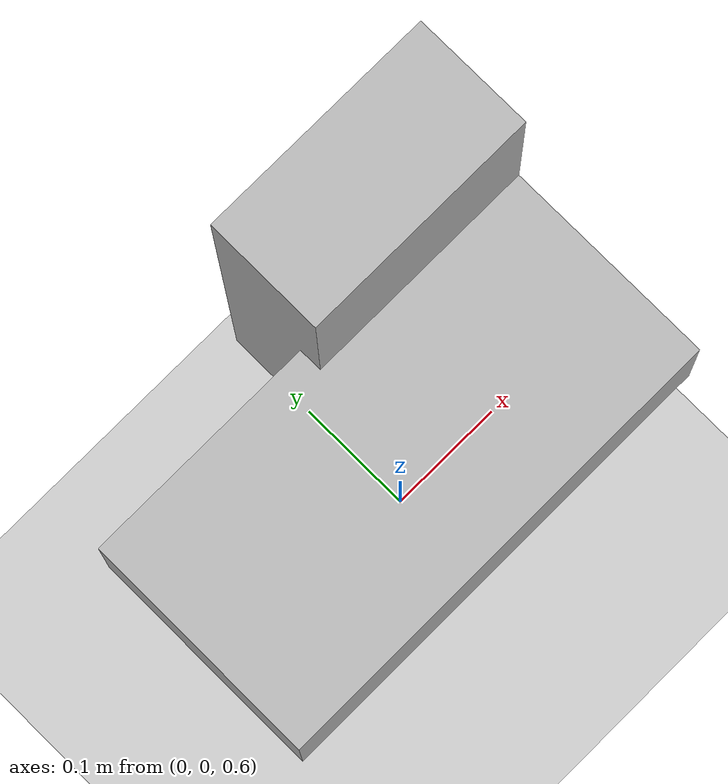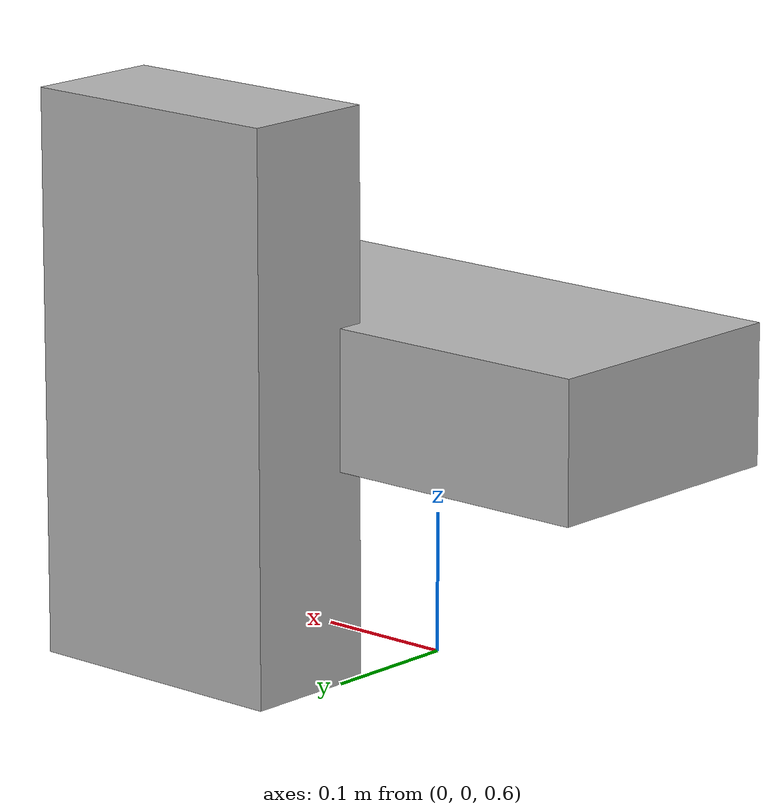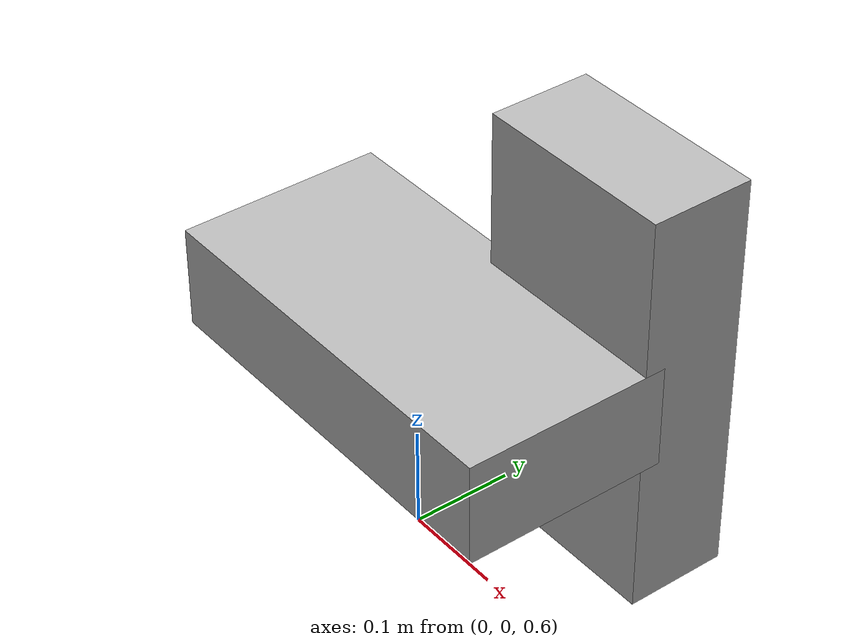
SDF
<?xml version="1.0" ?>
<sdf version="1.3">
  <world name="default">
    <physics type="rtql8">
      <gravity>0 0 -10.0</gravity>
    </physics>
    <include><uri>model://ground_plane</uri></include>
    <model name="test_model">
      <pose>0 0 0.7 0 0 0</pose>

      <link name='chassis'>
        <pose>0 0 .1 0 0 0</pose>

        <collision name='collision'>
          <geometry>
            <box>
              <size>.4 .2 .1</size>
            </box>
          </geometry>
        </collision>

        <visual name='visual'>
          <geometry>
            <box>
              <size>.4 .2 .1</size>
            </box>
          </geometry>
        </visual>

      </link>

      <link name="left_wheel">
	<pose>0.1 0.13 0.1 0 1.5707 1.5707</pose>
	<collision name="collision">
	  <geometry>
            <box>
              <size>.4 .2 .1</size>
            </box>
	  </geometry>
	</collision>
	<visual name="visual">
	  <geometry>
            <box>
              <size>.4 .2 .1</size>
            </box>
	  </geometry>
	</visual>
      </link>
      <joint type="revolute" name="left_wheel_hinge">
        <pose>0 0 -0.03 0 0 0</pose>
        <child>left_wheel</child>
        <parent>chassis</parent>
        <axis>
          <xyz>0 1 0</xyz>
        </axis>
      </joint>

    </model>
    <light type="directional" name="sun">
      <pose>0 0 10 0 0 0</pose>
      <diffuse>.8 .8 .8 1</diffuse>
      <specular>.1 .1 .1 1</specular>
      <attenuation>
        <range>10</range>
        <linear>0.01</linear>
        <constant>0.8</constant>
        <quadratic>0.0</quadratic>
      </attenuation>
      <direction>0 .5 -.5</direction>
      <cast_shadows>true</cast_shadows>
    </light>
  </world>
</sdf>
